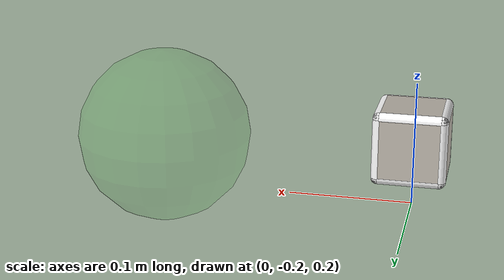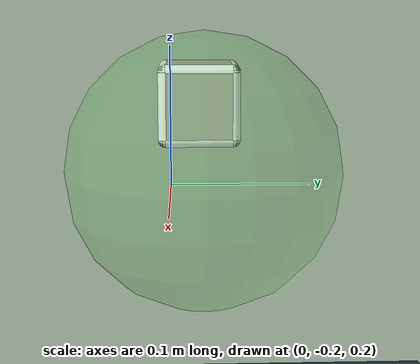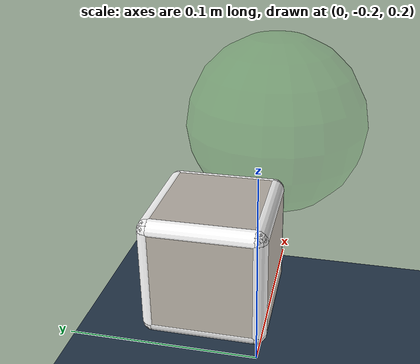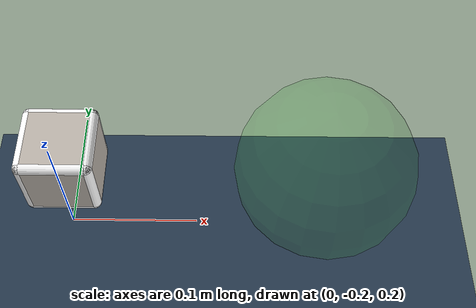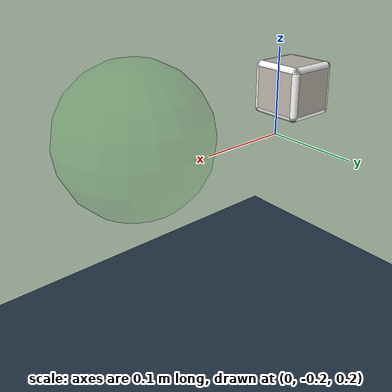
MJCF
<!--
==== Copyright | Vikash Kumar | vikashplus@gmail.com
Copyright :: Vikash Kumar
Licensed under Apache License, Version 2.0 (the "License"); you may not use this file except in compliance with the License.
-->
<mujoco model="Dice">

    <asset>
        <texture name='dice' file="dice.png" gridsize="3 4" gridlayout="..U.LFRB..D."/>
        <material name="MatDice" texture="dice" specular=".3" shininess="1" reflectance=".00001"/>
    </asset>

    <include file='../utils/basic_scene.xml'/>

    <worldbody>

        <body name="Object" pos="-0.00 -0.18 0.26" user="1001 0 2003 27 0 0 0.06 0 0">
            <inertial pos="0 0 0" mass="0.108" diaginertia="6.48e-05 6.48e-05 6.48e-05" />

            <geom pos='0 0 0' type="capsule" rgba='1 1 1 1' fromto=" 0.0235 -.0235 -.0235  .0235 .0235 -.0235" size=".0050"/>
            <geom pos='0 0 0' type="capsule" rgba='1 1 1 1' fromto="-.0235 -.0235 -.0235 -.0235 .0235 -.0235" size=".0050"/>
            <geom pos='0 0 0' type="capsule" rgba='1 1 1 1' fromto=" -.0235 .0235 -.0235  .0235 .0235 -.0235" size=".0050"/>
            <geom pos='0 0 0' type="capsule" rgba='1 1 1 1' fromto=" -.0235 -.0235 -.0235  .0235 -.0235 -.0235" size=".0050"/>
            <geom pos='0 0 0' type="capsule" rgba='1 1 1 1' fromto=" .0235 -.0235 .0235 .0235 .0235 .0235" size=".0050"/>
            <geom pos='0 0 0' type="capsule" rgba='1 1 1 1' fromto="-.0235 -.0235 .0235 -.0235 .0235 .0235" size=".0050"/>
            <geom pos='0 0 0' type="capsule" rgba='1 1 1 1' fromto=" -.0235 .0235 .0235  .0235 .0235 .0235" size=".0050"/>
            <geom pos='0 0 0' type="capsule" rgba='1 1 1 1' fromto=" -.0235 -.0235 .0235  .0235 -.0235 .0235" size=".0050"/>
            <geom pos='0 0 0' type="capsule" rgba='1 1 1 1' fromto=".0235 -.0235 -.0235  .0235 -.0235 .0235" size=".0050"/>
            <geom pos='0 0 0' type="capsule" rgba='1 1 1 1' fromto=".0235 .0235 -.0235  .0235 .0235 .0235" size=".0050"/>
            <geom pos='0 0 0' type="capsule" rgba='1 1 1 1' fromto="-.0235 .0235 -.0235  -.0235 .0235 .0235" size=".0050"/>
            <geom pos='0 0 0' type="capsule" rgba='1 1 1 1' fromto="-.0235 -.0235 -.0235  -.0235 -.0235 .0235" size=".0050"/>

            <geom type="box" size=".0284 .0236 .0236" material="MatDice"/>
            <geom type="box" size=".0236 .0284 .0236" material="MatDice"/>
            <geom type="box" size=".0236 .0236 .0284" material="MatDice"/>

            <joint name="OBJTx" pos="0 0 0" axis="1 0 0" type="slide" range="-.5 .5" damping="0.001" />
            <joint name="OBJTy" pos="0 0 0" axis="0 1 0" type="slide" range="-.5 .5" damping="0.001" />
            <joint name="OBJTz" pos="0 0 0" axis="0 0 1" type="slide" range="-.5 .5" damping="0.001" />
            <joint name="OBJRx" pos="0 0 0  " axis="1 0 0" limited="false" damping="0.001" />
            <joint name="OBJRy" pos="0 0 0" axis="0 1 0" limited="false" damping="0.001" />
            <joint name="OBJRz" pos="0 0 0" axis="0 0 1" limited="false" damping="0.001" />

            <site name="object_o" type="sphere" size="0.005" rgba="0.8 0.8 0.8 0.8" group="4" pos="0 0 0" />
            <site name="object_x" type="sphere" size="0.005" rgba="0.8 0.2 0.2 0.8" group="4" pos="0.028 0 0" />
            <site name="object_y" type="sphere" size="0.005" rgba="0.2 0.8 0.2 0.8" group="4" pos="0 .028 0" />
            <site name="object_z" type="sphere" size="0.005" rgba="0.2 0.2 0.8 0.8" group="4" pos="0 0 .028" />

        </body>

        <body name="target" pos="0.2 -0.18 0.25" >
            <geom name="target_dice" type="box" size="0.026 0.026 0.026" contype="0" conaffinity="0" material="MatDice" rgba='1 1 1 .3'/>
            <site name="target_ball" type="sphere" size="0.07" rgba="0.2 0.7 0.2 0.1"/>
            <site name="target_o" type="sphere" size="0.005" rgba="0.8 0.8 0.8 0.8" group="4" pos="0 0 0" />
            <site name="target_x" type="sphere" size="0.005" rgba="0.8 0.2 0.2 0.8" group="4" pos="0.03 0 0" />
            <site name="target_y" type="sphere" size="0.005" rgba="0.2 0.8 0.2 0.8" group="4" pos="0 .03 0" />
            <site name="target_z" type="sphere" size="0.005" rgba="0.2 0.2 0.8 0.8" group="4" pos="0 0 .03" />
        </body>
    </worldbody>

</mujoco>

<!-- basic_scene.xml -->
<mujocoinclude>

    <visual>
        <quality shadowsize="4048"/>
    </visual>

    <asset>
        <texture name="skybox" type="skybox" builtin="gradient" rgb1=".08 .09 .10" rgb2="0 0 0"
               width="800" height="800" mark="random" markrgb=".8 .8 .8"/>
        <texture name="texplane" type="2d" builtin="checker" rgb1=".2 .3 .4" rgb2=".1 0.15 0.2" width="512" height="512" markrgb='.1 .1 .1' mark='random' random='.05'/>
        <material name='MatPlane' reflectance='0.05' texture="texplane" texrepeat="1 1" texuniform="true"/>
    </asset>

    <worldbody>
        <light directional='true' diffuse='.8 .8 .8' specular='0.3 0.3 0.3' pos='-1 -1 1' dir='1 1 -1'/>
		<geom name='floor' pos='0 0 0' size='2 2 .1' conaffinity='1' contype='1' type='plane' material="MatPlane" condim='3'/>
    </worldbody>
</mujocoinclude>
